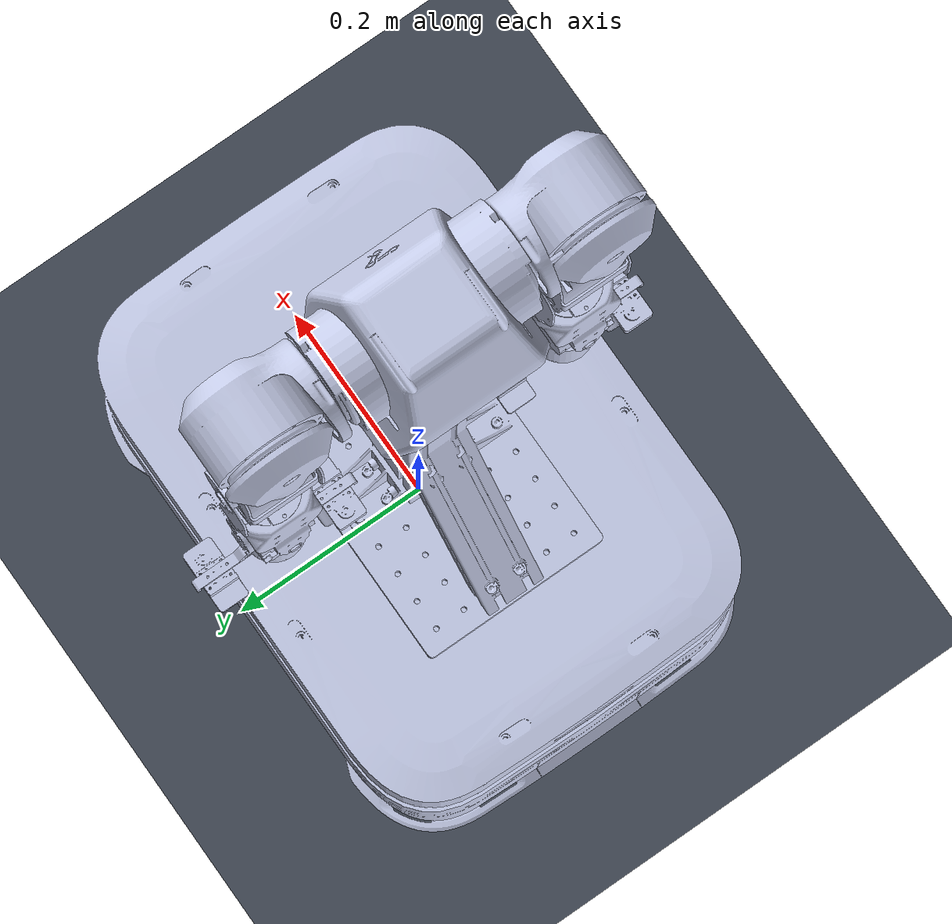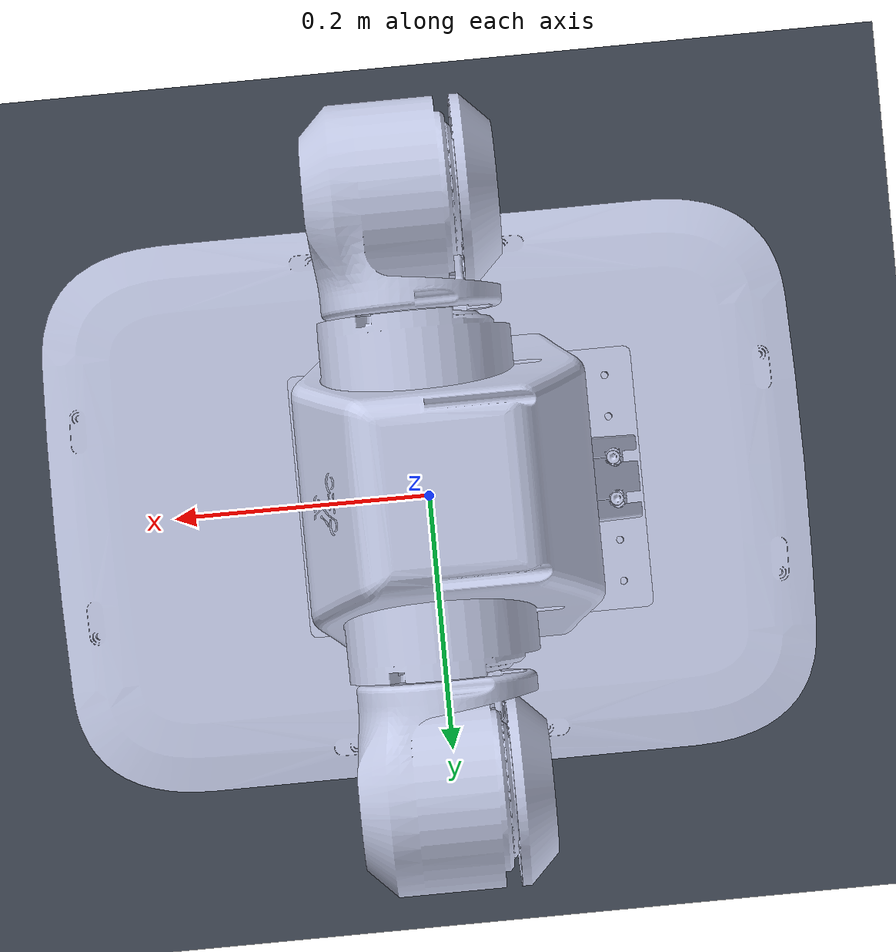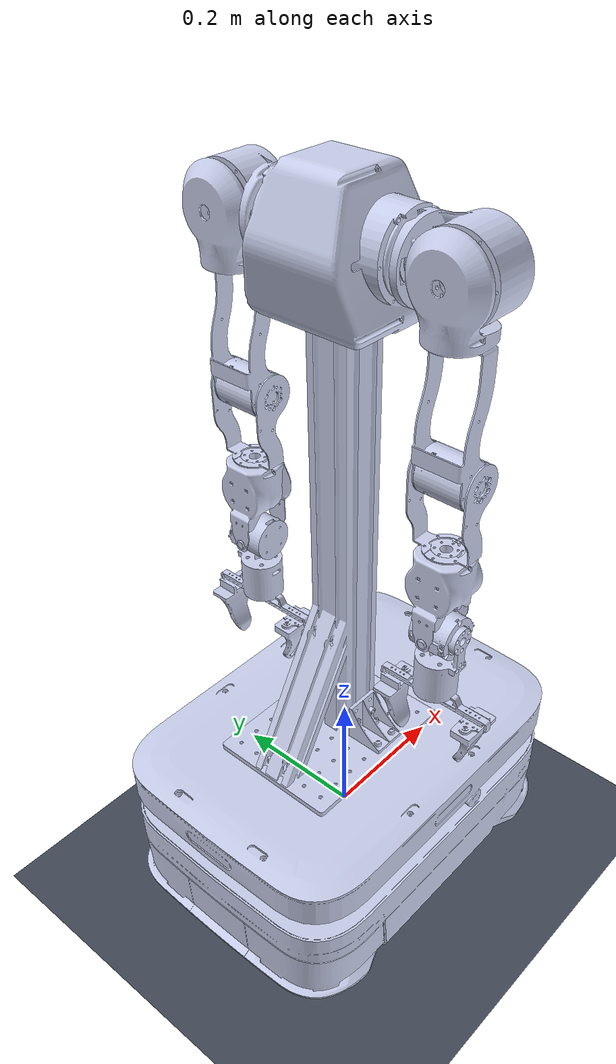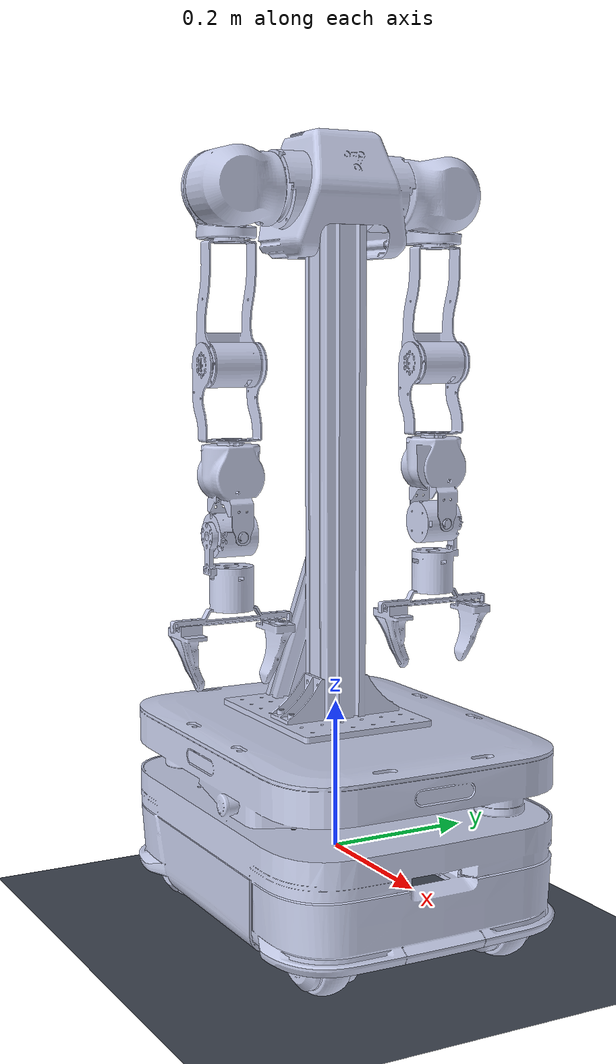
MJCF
<?xml version="1.0" encoding="utf-8"?>
<mujoco model="g7_openarm_viewer_scene">
  <include file="g7_openarm.MJCF"/>

  <visual>
    <headlight ambient="0.18 0.18 0.18" diffuse="0.55 0.55 0.55" specular="0.08 0.08 0.08"/>
    <rgba haze="0.86 0.9 0.96 1"/>
    <global azimuth="135" elevation="-20"/>
    <quality shadowsize="1024"/>
    <map znear="0.01" zfar="30" fogstart="10" fogend="24"/>
  </visual>

  <asset>
    <texture
      name="skybox"
      type="skybox"
      builtin="gradient"
      rgb1="0.9 0.94 0.99"
      rgb2="0.32 0.44 0.62"
      width="512"
      height="3072"/>
  </asset>

  <worldbody>
    <light name="viewer_key" pos="2.5 -1.5 4.5" dir="-0.3 0.2 -1" directional="true" diffuse="0.8 0.82 0.85"/>
    <light name="viewer_fill" pos="-2.0 2.5 3.5" dir="0.2 -0.3 -1" directional="true" diffuse="0.28 0.32 0.38"/>
    <camera name="viewer_isometric" pos="2.9 -2.6 1.95" xyaxes="0.667 0.745 0 -0.42 0.376 0.826"/>
    <camera name="viewer_side" pos="3.0 0.0 1.35" xyaxes="0 1 0 -0.28 0 0.96"/>
  </worldbody>
</mujoco>

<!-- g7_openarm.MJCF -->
<mujoco model="g7_openarm">
  <compiler angle="radian" meshdir="../meshes" balanceinertia="true" discardvisual="false"/>
  <option gravity="0 0 -9.81" timestep="0.002" integrator="implicitfast"/>
  <statistic center="0 0 0.6" extent="2"/>
  <visual>
    <headlight ambient="0.45 0.45 0.45" diffuse="0.65 0.65 0.65"/>
  </visual>
  <asset>
    <texture
      name="groundplane_texture"
      type="2d"
      builtin="checker"
      rgb1="0.34 0.38 0.44"
      rgb2="0.18 0.2 0.24"
      width="512"
      height="512"
      mark="edge"
      markrgb="0.42 0.47 0.55"/>
    <material
      name="groundplane"
      texture="groundplane_texture"
      texrepeat="8 8"
      texuniform="true"
      reflectance="0.03"
      shininess="0.05"/>
    <mesh name="AMR_base_link_mesh" file="AMR_base_link.STL"/>
    <mesh name="AMR_FL_link_mesh" file="AMR_FL_link.STL"/>
    <mesh name="AMR_FLW_link_mesh" file="AMR_FLW_link.STL"/>
    <mesh name="AMR_FR_link_mesh" file="AMR_FR_link.STL"/>
    <mesh name="AMR_FRW_link_mesh" file="AMR_FRW_link.STL"/>
    <mesh name="AMR_RL_link_mesh" file="AMR_RL_link.STL"/>
    <mesh name="AMR_RLW_link_mesh" file="AMR_RLW_link.STL"/>
    <mesh name="AMR_RR_link_mesh" file="AMR_RR_link.STL"/>
    <mesh name="AMR_RRW_link_mesh" file="AMR_RRW_link.STL"/>
    <mesh name="openarm_base_link_mesh" file="openarm_base_link.STL"/>
    <mesh name="chest_link_mesh" file="chest_link.STL"/>
    <mesh name="L_link1_mesh" file="L_link1.STL"/>
    <mesh name="L_link2_mesh" file="L_link2.STL"/>
    <mesh name="L_link3_mesh" file="L_link3.STL"/>
    <mesh name="L_link4_mesh" file="L_link4.STL"/>
    <mesh name="L_link5_mesh" file="L_link5.STL"/>
    <mesh name="L_link6_mesh" file="L_link6.STL"/>
    <mesh name="L_link7_mesh" file="L_link7.STL"/>
    <mesh name="gripper_LL_link_mesh" file="gripper_LL_link.STL"/>
    <mesh name="gripper_LR_link_mesh" file="gripper_LR_link.STL"/>
    <mesh name="R_link1_mesh" file="R_link1.STL"/>
    <mesh name="R_link2_mesh" file="R_link2.STL"/>
    <mesh name="R_link3_mesh" file="R_link3.STL"/>
    <mesh name="R_link4_mesh" file="R_link4.STL"/>
    <mesh name="R_link5_mesh" file="R_link5.STL"/>
    <mesh name="R_link6_mesh" file="R_link6.STL"/>
    <mesh name="R_link7_mesh" file="R_link7.STL"/>
    <mesh name="gripper_RL_link_mesh" file="gripper_RL_link.STL"/>
    <mesh name="gripper_RR_link_mesh" file="gripper_RR_link.STL"/>
  </asset>
  <default>
    <joint damping="1" armature="0.01"/>
    <geom friction="0.8 0.1 0.1" condim="3"/>
    <motor ctrllimited="true"/>
  </default>
  <worldbody>
    <light name="sun" pos="0 0 3" dir="0 0 -1" directional="true" diffuse="0.9 0.9 0.9"/>
    <geom
      name="floor"
      type="plane"
      size="0 0 0.05"
      pos="0 0 -0.11"
      material="groundplane"
      friction="1.0 0.1 0.1"/>
    <camera name="front" pos="2.4 0 1.4" xyaxes="0 1 0 -0.35 0 0.94"/>
    <camera name="isometric" pos="1.8 -1.8 1.6" xyaxes="0.707 0.707 0 -0.408 0.408 0.816"/>
    <!-- Base z is chosen so the wheel collision cylinders just touch the floor:
         min(wheel_center_z) = -0.1077402588, wheel_radius = 0.052, floor_z = -0.11 -->
    <body name="AMR_base_link" pos="0 0 0.0497402588">
      <joint name="base_x_joint" type="slide" axis="1 0 0"/>
      <joint name="base_y_joint" type="slide" axis="0 1 0"/>
      <joint name="base_yaw_joint" type="hinge" axis="0 0 1"/>
      <inertial pos="-0.00420581 -9.293e-05 0.03202295" mass="40.00000000" fullinertia="1.02060130 1.65877875 2.23847353 -0.04446226 -0.01112583 -0.00073134"/>
      <geom type="mesh" mesh="AMR_base_link_mesh" contype="0" conaffinity="0" rgba="0.79215686 0.81960784 0.93333333 1"/>
      <body name="AMR_FL_link" pos="0.198 0.13 -0.05524">
        <inertial pos="0 -0.00073433 -0.04689656" mass="0.30000000" fullinertia="0.00051815 0.00039542 0.00051269 -0.0000001 -0.0000001 -0.00000672"/>
        <geom type="mesh" mesh="AMR_FL_link_mesh" contype="0" conaffinity="0" rgba="0.79215686 0.81960784 0.93333333 1"/>
        <joint name="AMR_FL_joint" type="hinge" axis="0 0 1" range="-3.14159 3.14159" limited="true"/>
        <body name="AMR_FLW_link" pos="0 0 -0.0525">
          <inertial pos="0 0 0" mass="1.00000000" fullinertia="0.00118731 0.00219404 0.00118754 -0.0000001 -0.0000001 -0.0000001"/>
          <geom type="mesh" mesh="AMR_FLW_link_mesh" contype="0" conaffinity="0" rgba="0.79215686 0.81960784 0.93333333 1"/>
          <geom name="AMR_FLW_link_collision_0" type="cylinder" group="3" size="0.052 0.0375" euler="-1.5708 0 0"/>
          <joint name="AMR_FLW_joint" type="hinge" axis="0 1 0" range="-3.14159 3.14159" limited="true"/>
        </body>
      </body>
      <body name="AMR_FR_link" pos="0.198 -0.13 -0.0552402588">
        <inertial pos="0 0.00073437 -0.0468966" mass="0.30000000" fullinertia="0.00051815 0.00039542 0.00051269 -0.0000001 -0.0000001 0.00000672"/>
        <geom type="mesh" mesh="AMR_FR_link_mesh" contype="0" conaffinity="0" rgba="0.79215686 0.81960784 0.93333333 1"/>
        <joint name="AMR_FR_joint" type="hinge" axis="0 0 1" range="-3.14159 3.14159" limited="true"/>
        <body name="AMR_FRW_link" pos="0 0 -0.0525">
          <inertial pos="0 0 0" mass="1.00000000" fullinertia="0.00118724 0.00219393 0.00118750 -0.0000001 0.00000001 -0.0000001"/>
          <geom type="mesh" mesh="AMR_FRW_link_mesh" contype="0" conaffinity="0" rgba="0.79215686 0.81960784 0.93333333 1"/>
          <geom name="AMR_FRW_link_collision_0" type="cylinder" group="3" size="0.052 0.0375" euler="-1.5708 0 0"/>
          <joint name="AMR_FRW_joint" type="hinge" axis="0 1 0" range="-3.14159 3.14159" limited="true"/>
        </body>
      </body>
      <body name="AMR_RL_link" pos="-0.198 0.13 -0.0552402588">
        <inertial pos="0 -0.00073434 -0.04689667" mass="0.30000000" fullinertia="0.00051815 0.00039542 0.00051269 -0.0000001 -0.0000001 -0.00000672"/>
        <geom type="mesh" mesh="AMR_RL_link_mesh" contype="0" conaffinity="0" rgba="0.79215686 0.81960784 0.93333333 1"/>
        <joint name="AMR_RL_joint" type="hinge" axis="0 0 1" range="-3.14159 3.14159" limited="true"/>
        <body name="AMR_RLW_link" pos="0 0 -0.0525">
          <inertial pos="0 0 0" mass="1.00000000" fullinertia="0.00118724 0.00219393 0.00118750 -0.0000001 -0.00000001 -0.0000001"/>
          <geom type="mesh" mesh="AMR_RLW_link_mesh" contype="0" conaffinity="0" rgba="0.79215686 0.81960784 0.93333333 1"/>
          <geom name="AMR_RLW_link_collision_0" type="cylinder" group="3" size="0.052 0.0375" euler="-1.5708 0 0"/>
          <joint name="AMR_RLW_joint" type="hinge" axis="0 1 0" range="-3.14159 3.14159" limited="true"/>
        </body>
      </body>
      <body name="AMR_RR_link" pos="-0.198 -0.13 -0.0552402588">
        <inertial pos="0 0.00073452 -0.04689618" mass="0.30000000" fullinertia="0.00051815 0.00039542 0.00051268 -0.0000001 -0.0000001 0.00000672"/>
        <geom type="mesh" mesh="AMR_RR_link_mesh" contype="0" conaffinity="0" rgba="0.79215686 0.81960784 0.93333333 1"/>
        <joint name="AMR_RR_joint" type="hinge" axis="0 0 1" range="-3.14159 3.14159" limited="true"/>
        <body name="AMR_RRW_link" pos="0 0 -0.0525">
          <inertial pos="0 0 0" mass="1.00000000" fullinertia="0.00118724 0.00219393 0.00118750 -0.0000001 0.00000001 -0.0000001"/>
          <geom type="mesh" mesh="AMR_RRW_link_mesh" contype="0" conaffinity="0" rgba="0.79215686 0.81960784 0.93333333 1"/>
          <geom name="AMR_RRW_link_collision_0" type="cylinder" group="3" size="0.052 0.0375" euler="-1.5708 0 0"/>
          <joint name="AMR_RRW_joint" type="hinge" axis="0 1 0" range="-3.14159 3.14159" limited="true"/>
        </body>
      </body>
      <body name="openarm_base_link" pos="0 0 0.132959535">
        <inertial pos="-0.01646506 0 0.21859446" mass="10.00000000" fullinertia="0.59631910 0.60835762 0.03755484 -0.0000001 -0.03055732 0.00000213"/>
        <geom type="mesh" mesh="openarm_base_link_mesh" contype="0" conaffinity="0" rgba="0.79215686 0.81960784 0.93333333 1"/>
        <body name="chest_link" pos="0 0 0.689">
          <inertial pos="-0.00265421 0 -0.00031617" mass="6.17600000" fullinertia="0.02956793 0.01200152 0.02910647 -0.0000001 -0.00029374 0.00000004"/>
          <geom type="mesh" mesh="chest_link_mesh" contype="0" conaffinity="0" rgba="0.79215686 0.81960784 0.93333333 1"/>
          <body name="L_link1" pos="0 0.0875 0">
            <inertial pos="0.00285795 0.06323211 -6.09e-06" mass="1.14100000" fullinertia="0.00139244 0.00104046 0.00110704 -0.00001356 -0.00000019 -0.00000029"/>
            <geom type="mesh" mesh="L_link1_mesh" contype="0" conaffinity="0" rgba="0.79215686 0.81960784 0.93333333 1"/>
            <joint name="L_1_joint" type="hinge" axis="0 -1 0" range="-3.14159 3.14159" limited="true"/>
            <body name="L_link2" pos="-0.0284 0.065 0">
              <inertial pos="0.00301991 0 -0.0217183" mass="0.27700000" fullinertia="0.00049305 0.00048214 0.00036345 -0.0000001 0.00014151 -0.0000001"/>
              <geom type="mesh" mesh="L_link2_mesh" contype="0" conaffinity="0" rgba="0.79215686 0.81960784 0.93333333 1"/>
              <joint name="L_2_joint" type="hinge" axis="1 0 0" range="-3.14159 3.14159" limited="true"/>
              <body name="L_link3" pos="0.0284 0 -0.051">
                <inertial pos="-0.00800186 -0.00033975 -0.05313979" mass="1.07300000" fullinertia="0.00443269 0.00413974 0.00078221 -0.00000078 -0.00015818 -0.00004081"/>
                <geom type="mesh" mesh="L_link3_mesh" contype="0" conaffinity="0" rgba="0.79215686 0.81960784 0.93333333 1"/>
                <joint name="L_3_joint" type="hinge" axis="0 0 -1" range="-3.14159 3.14159" limited="true"/>
                <body name="L_link4" pos="0 -5e-05 -0.169">
                  <inertial pos="-0.00037734 -0.00097263 -0.00461696" mass="0.63400000" fullinertia="0.00060961 0.00047016 0.00040332 -0.00000053 -0.00001302 0.00000217"/>
                  <geom type="mesh" mesh="L_link4_mesh" contype="0" conaffinity="0" rgba="0.79215686 0.81960784 0.93333333 1"/>
                  <joint name="L_4_joint" type="hinge" axis="0 1 0" range="-3.14159 3.14159" limited="true"/>
                  <body name="L_link5" pos="0 0 -0.0955">
                    <inertial pos="-0.00157437 0.00139758 -0.03681664" mass="0.61500000" fullinertia="0.00074540 0.00083736 0.00058462 -0.00001828 -0.00001714 0.00001295"/>
                    <geom type="mesh" mesh="L_link5_mesh" contype="0" conaffinity="0" rgba="0.79215686 0.81960784 0.93333333 1"/>
                    <joint name="L_5_joint" type="hinge" axis="0 0 -1" range="-3.14159 3.14159" limited="true"/>
                    <body name="L_link6" pos="0 0 -0.1205">
                      <inertial pos="-0.00011822 0.00048177 9.191e-05" mass="0.47500000" fullinertia="0.00018977 0.00021208 0.00020871 -0.00000123 -0.0000001 -0.00000105"/>
                      <geom type="mesh" mesh="L_link6_mesh" contype="0" conaffinity="0" rgba="0.79215686 0.81960784 0.93333333 1"/>
                      <joint name="L_6_joint" type="hinge" axis="-1 0 0" range="0 0.09" limited="true"/>
                      <body name="L_link7" pos="0 0.03175 0">
                        <inertial pos="-9.378e-05 -0.02922375 -0.06681711" mass="0.46500000" fullinertia="0.00050958 0.00040251 0.00028167 -0.00000011 0.00000057 -0.00006785"/>
                        <geom type="mesh" mesh="L_link7_mesh" contype="0" conaffinity="0" rgba="0.79215686 0.81960784 0.93333333 1"/>
                        <joint name="L_7_joint" type="hinge" axis="0 -1 0" range="-3.14159 3.14159" limited="true"/>
                        <body name="gripper_LL_link" pos="0 0.03075 -0.119">
                          <inertial pos="0.00223798 -0.00193863 -0.02110105" mass="0.05000000" fullinertia="0.00002622 0.00003424 0.00001385 -0.00000021 -0.00000145 -0.00000428"/>
                          <geom type="mesh" mesh="gripper_LL_link_mesh" contype="0" conaffinity="0" rgba="0.79215686 0.81960784 0.93333333 1"/>
                          <joint name="gripper_LL_joint" type="slide" axis="0 -1 0" range="0 0.04" limited="true"/>
                        </body>
                        <body name="gripper_LR_link" pos="0 -0.09425 -0.119">
                          <inertial pos="-0.0011596 0.00192174 -0.02103325" mass="0.05000000" fullinertia="0.00002610 0.00003431 0.00001403 -0.00000012 0.00000170 0.00000425"/>
                          <geom type="mesh" mesh="gripper_LR_link_mesh" contype="0" conaffinity="0" rgba="0.79215686 0.81960784 0.93333333 1"/>
                          <joint name="gripper_LR_joint" type="slide" axis="0 1 0" range="0 0.04" limited="true"/>
                        </body>
                        <body name="L_ee_link" pos="0 -0.03175 -0.119"/>
                      </body>
                    </body>
                  </body>
                </body>
              </body>
            </body>
          </body>
          <body name="R_link1" pos="0 -0.0875 0">
            <inertial pos="0.00285822 -0.06323203 6.03e-06" mass="1.14100000" fullinertia="0.00139241 0.00104046 0.00110708 0.00001354 0.00000019 -0.00000029"/>
            <geom type="mesh" mesh="R_link1_mesh" contype="0" conaffinity="0" rgba="0.79215686 0.81960784 0.93333333 1"/>
            <joint name="R_1_joint" type="hinge" axis="0 -1 0" range="-3.14159 3.14159" limited="true"/>
            <body name="R_link2" pos="-0.0284 -0.065 0">
              <inertial pos="0.00301991 0 -0.0217183" mass="0.27700000" fullinertia="0.00049305 0.00048214 0.00036345 -0.0000001 0.00014151 -0.0000001"/>
              <geom type="mesh" mesh="R_link2_mesh" contype="0" conaffinity="0" rgba="0.79215686 0.81960784 0.93333333 1"/>
              <joint name="R_2_joint" type="hinge" axis="1 0 0" range="-3.14159 3.14159" limited="true"/>
              <body name="R_link3" pos="0.0284 0 -0.051">
                <inertial pos="-0.00800186 -0.00033975 -0.05313979" mass="1.07300000" fullinertia="0.00443269 0.00413974 0.00078221 -0.00000078 -0.00015818 -0.00004081"/>
                <geom type="mesh" mesh="R_link3_mesh" contype="0" conaffinity="0" rgba="0.79215686 0.81960784 0.93333333 1"/>
                <joint name="R_3_joint" type="hinge" axis="0 0 -1" range="-3.14159 3.14159" limited="true"/>
                <body name="R_link4" pos="0 0 -0.169">
                  <inertial pos="-0.00037734 -0.00102263 -0.00461696" mass="0.63400000" fullinertia="0.00060961 0.00047016 0.00040332 -0.00000053 -0.00001302 0.00000217"/>
                  <geom type="mesh" mesh="R_link4_mesh" contype="0" conaffinity="0" rgba="0.79215686 0.81960784 0.93333333 1"/>
                  <joint name="R_4_joint" type="hinge" axis="0 1 0" range="-3.14159 3.14159" limited="true"/>
                  <body name="R_link5" pos="0 0 -0.0955">
                    <inertial pos="-0.00156592 -0.00144926 -0.03681509" mass="0.61500000" fullinertia="0.00074535 0.00083735 0.00058461 0.00001841 -0.00001717 -0.00001291"/>
                    <geom type="mesh" mesh="R_link5_mesh" contype="0" conaffinity="0" rgba="0.79215686 0.81960784 0.93333333 1"/>
                    <joint name="R_5_joint" type="hinge" axis="0 0 -1" range="-3.14159 3.14159" limited="true"/>
                    <body name="R_link6" pos="0 0 -0.1205">
                      <inertial pos="0.00011815 -0.00053178 9.193e-05" mass="0.47500000" fullinertia="0.00018977 0.00021208 0.00020871 -0.00000123 -0.0000001 0.00000105"/>
                      <geom type="mesh" mesh="R_link6_mesh" contype="0" conaffinity="0" rgba="0.79215686 0.81960784 0.93333333 1"/>
                      <joint name="R_6_joint" type="hinge" axis="-1 0 0" range="0 0.09" limited="true"/>
                      <body name="R_link7" pos="0 -0.0318 0">
                        <inertial pos="-9.199e-05 0.02922377 -0.0668171" mass="0.46500000" fullinertia="0.00050959 0.00040251 0.00028167 0.0000001 0.00000057 0.00006785"/>
                        <geom type="mesh" mesh="R_link7_mesh" contype="0" conaffinity="0" rgba="0.79215686 0.81960784 0.93333333 1"/>
                        <joint name="R_7_joint" type="hinge" axis="0 -1 0" range="-3.14159 3.14159" limited="true"/>
                        <body name="gripper_RL_link" pos="0 0.09425 -0.119">
                          <inertial pos="0.00223998 -0.00193863 -0.02110105" mass="0.05000000" fullinertia="0.00002622 0.00003424 0.00001385 -0.00000021 -0.00000145 -0.00000428"/>
                          <geom type="mesh" mesh="gripper_RL_link_mesh" contype="0" conaffinity="0" rgba="0.79215686 0.81960784 0.93333333 1"/>
                          <joint name="gripper_RL_joint" type="slide" axis="0 -1 0" range="0 0.04" limited="true"/>
                        </body>
                        <body name="gripper_RR_link" pos="0 -0.03075 -0.119">
                          <inertial pos="-0.00115767 0.00192173 -0.02103327" mass="0.05000000" fullinertia="0.00002610 0.00003431 0.00001403 0.00000012 -0.00000170 -0.00000425"/>
                          <geom type="mesh" mesh="gripper_RR_link_mesh" contype="0" conaffinity="0" rgba="0.79215686 0.81960784 0.93333333 1"/>
                          <joint name="gripper_RR_joint" type="slide" axis="0 1 0" range="0 0.04" limited="true"/>
                        </body>
                        <body name="R_ee_link" pos="0 0.03175 -0.119"/>
                      </body>
                    </body>
                  </body>
                </body>
              </body>
            </body>
          </body>
        </body>
      </body>
    </body>
  </worldbody>
  <actuator>
    <motor name="base_x_joint_act" joint="base_x_joint" gear="1" ctrlrange="-500 500" ctrllimited="true"/>
    <motor name="base_y_joint_act" joint="base_y_joint" gear="1" ctrlrange="-500 500" ctrllimited="true"/>
    <motor name="base_yaw_joint_act" joint="base_yaw_joint" gear="1" ctrlrange="-500 500" ctrllimited="true"/>
    <motor name="AMR_FL_joint_act" joint="AMR_FL_joint" gear="1" ctrlrange="-200 200" forcelimited="true" forcerange="-200 200"/>
    <motor name="AMR_FLW_joint_act" joint="AMR_FLW_joint" gear="1" ctrlrange="-200 200" forcelimited="true" forcerange="-200 200"/>
    <motor name="AMR_FR_joint_act" joint="AMR_FR_joint" gear="1" ctrlrange="-200 200" forcelimited="true" forcerange="-200 200"/>
    <motor name="AMR_FRW_joint_act" joint="AMR_FRW_joint" gear="1" ctrlrange="-200 200" forcelimited="true" forcerange="-200 200"/>
    <motor name="AMR_RL_joint_act" joint="AMR_RL_joint" gear="1" ctrlrange="-200 200" forcelimited="true" forcerange="-200 200"/>
    <motor name="AMR_RLW_joint_act" joint="AMR_RLW_joint" gear="1" ctrlrange="-200 200" forcelimited="true" forcerange="-200 200"/>
    <motor name="AMR_RR_joint_act" joint="AMR_RR_joint" gear="1" ctrlrange="-200 200" forcelimited="true" forcerange="-200 200"/>
    <motor name="AMR_RRW_joint_act" joint="AMR_RRW_joint" gear="1" ctrlrange="-200 200" forcelimited="true" forcerange="-200 200"/>
    <motor name="L_1_joint_act" joint="L_1_joint" gear="1" ctrlrange="-120 120" forcelimited="true" forcerange="-120 120"/>
    <motor name="L_2_joint_act" joint="L_2_joint" gear="1" ctrlrange="-120 120" forcelimited="true" forcerange="-120 120"/>
    <motor name="L_3_joint_act" joint="L_3_joint" gear="1" ctrlrange="-120 120" forcelimited="true" forcerange="-120 120"/>
    <motor name="L_4_joint_act" joint="L_4_joint" gear="1" ctrlrange="-120 120" forcelimited="true" forcerange="-120 120"/>
    <motor name="L_5_joint_act" joint="L_5_joint" gear="1" ctrlrange="-120 120" forcelimited="true" forcerange="-120 120"/>
    <motor name="L_6_joint_act" joint="L_6_joint" gear="1" ctrlrange="-20 20" forcelimited="true" forcerange="-20 20"/>
    <motor name="L_7_joint_act" joint="L_7_joint" gear="1" ctrlrange="-120 120" forcelimited="true" forcerange="-120 120"/>
    <motor name="gripper_LL_joint_act" joint="gripper_LL_joint" gear="1" ctrlrange="-80 80" forcelimited="true" forcerange="-80 80"/>
    <motor name="gripper_LR_joint_act" joint="gripper_LR_joint" gear="1" ctrlrange="-80 80" forcelimited="true" forcerange="-80 80"/>
    <motor name="R_1_joint_act" joint="R_1_joint" gear="1" ctrlrange="-120 120" forcelimited="true" forcerange="-120 120"/>
    <motor name="R_2_joint_act" joint="R_2_joint" gear="1" ctrlrange="-120 120" forcelimited="true" forcerange="-120 120"/>
    <motor name="R_3_joint_act" joint="R_3_joint" gear="1" ctrlrange="-120 120" forcelimited="true" forcerange="-120 120"/>
    <motor name="R_4_joint_act" joint="R_4_joint" gear="1" ctrlrange="-120 120" forcelimited="true" forcerange="-120 120"/>
    <motor name="R_5_joint_act" joint="R_5_joint" gear="1" ctrlrange="-120 120" forcelimited="true" forcerange="-120 120"/>
    <motor name="R_6_joint_act" joint="R_6_joint" gear="1" ctrlrange="-20 20" forcelimited="true" forcerange="-20 20"/>
    <motor name="R_7_joint_act" joint="R_7_joint" gear="1" ctrlrange="-120 120" forcelimited="true" forcerange="-120 120"/>
    <motor name="gripper_RL_joint_act" joint="gripper_RL_joint" gear="1" ctrlrange="-80 80" forcelimited="true" forcerange="-80 80"/>
    <motor name="gripper_RR_joint_act" joint="gripper_RR_joint" gear="1" ctrlrange="-80 80" forcelimited="true" forcerange="-80 80"/>
  </actuator>
  <keyframe>
    <key name="home" qpos="0 0 0 0 0 0 0 0 0 0 0 0 0 0 0 0 0 0 0 0 0 0 0 0 0 0 0 0 0"/>
  </keyframe>
</mujoco>
